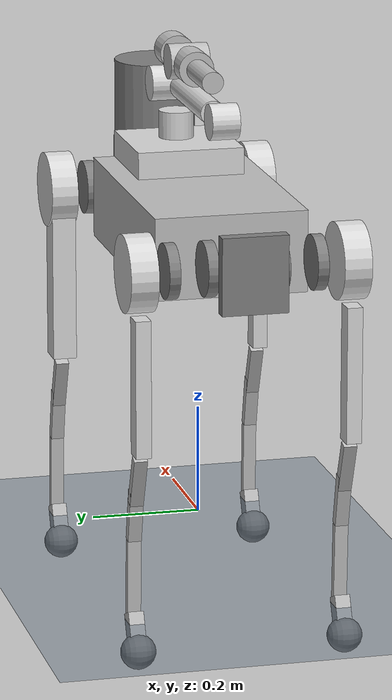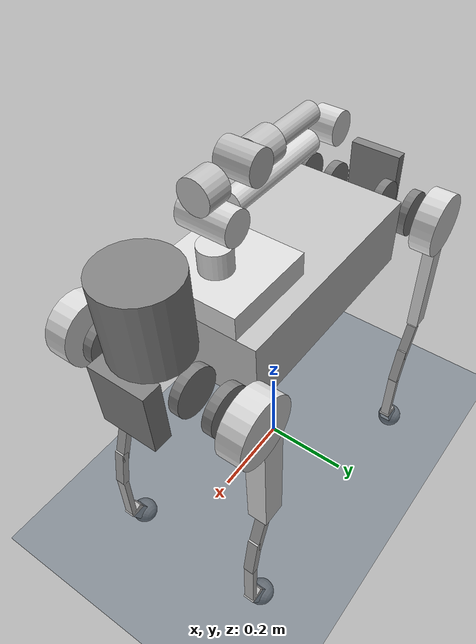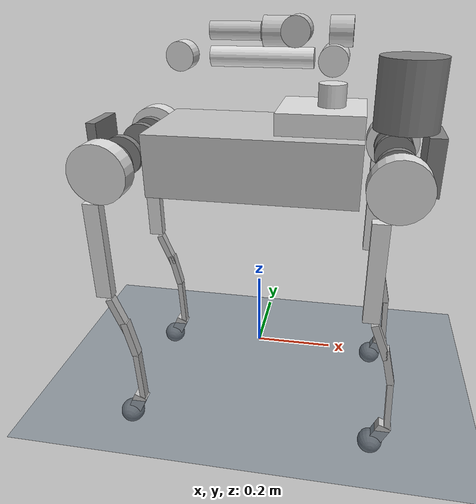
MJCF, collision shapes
<mujoco model="b2z1">
  <compiler autolimits="true" angle="radian" meshdir="../meshes/"/>

  <asset>
    <texture name="grid" type="2d" builtin="checker" rgb1=".1 .2 .3" rgb2=".2 .3 .4" width="300" height="300"/>
    <material name="grid" texture="grid" texrepeat="1 1" texuniform="true" reflectance=".2"/>

    <mesh name="base_link" file="base_link.stl"/>
    <mesh name="FL_hip" file="FL_hip.stl"/>
    <mesh name="FL_thigh" file="FL_thigh.stl"/>
    <mesh name="FL_calf" file="FL_calf.stl"/>
    <mesh name="FR_hip" file="FR_hip.stl"/>
    <mesh name="FR_thigh" file="FR_thigh.stl"/>
    <mesh name="FR_calf" file="FR_calf.stl"/>
    <mesh name="RL_hip" file="RL_hip.stl"/>
    <mesh name="RL_thigh" file="RL_thigh.stl"/>
    <mesh name="RL_calf" file="RL_calf.stl"/>
    <mesh name="RR_hip" file="RR_hip.stl"/>
    <mesh name="RR_thigh" file="RR_thigh.stl"/>
    <mesh name="RR_calf" file="RR_calf.stl"/>
    <mesh name="z1_Link00" file="z1_Link00.stl"/>
    <mesh name="z1_Link01" file="z1_Link01.stl"/>
    <mesh name="z1_Link02" file="z1_Link02.stl"/>
    <mesh name="z1_Link03" file="z1_Link03.stl"/>
    <mesh name="z1_Link04" file="z1_Link04.stl"/>
    <mesh name="z1_Link05" file="z1_Link05.stl"/>
    <mesh name="z1_Link06" file="z1_Link06.stl"/>
  </asset>

  <worldbody>
    <!-- 添加地面 -->
    <geom name="ground" type="plane" size="10 10 0.1" pos="0 0 -0.1" material="grid" friction="1.2 0.3 0.1"/>

    <!-- 调整机器人整体高度，使其站立在地面上 -->
    <body name="base_link" pos="0 0 0.55">
      <freejoint/>
      <!-- 原有的机器人几何体全部移入这个body中 -->
      <geom type="mesh" contype="0" conaffinity="0" group="1" density="0" rgba="0.74876 0.74876 0.74876 1" mesh="base_link"/>
      <geom size="0.25 0.14 0.075" type="box" rgba="0.74876 0.74876 0.74876 1"/>
      <geom size="0.076 0.08" pos="0.34218 0 0.15851" type="cylinder"/>
      <geom size="0.02 0.06 0.07" pos="0.41 0 0.005" type="box"/>
      <geom size="0.0125 0.06 0.07" pos="-0.405 0 0.005" type="box"/>
      <geom size="0.05 0.01" pos="0.20205 0.072 0" quat="0.707107 0 0.707107 0" type="cylinder"/>
      <geom size="0.05 0.01" pos="0.20205 -0.072 0" quat="0.707107 0 0.707107 0" type="cylinder"/>
      <geom size="0.05 0.01" pos="-0.20205 0.072 0" quat="0.707107 0 0.707107 0" type="cylinder"/>
      <geom size="0.05 0.01" pos="-0.20205 -0.072 0" quat="0.707107 0 0.707107 0" type="cylinder"/>
      <geom size="0.1 0.1 0.025" pos="0.15 0 0.1" type="box" contype="0" conaffinity="0" group="1" density="0" rgba="0.85 0.85 0.85 1"/>
      <geom size="0.1 0.1 0.025" pos="0.15 0 0.1" type="box" rgba="0.85 0.85 0.85 1"/>
      <geom pos="0.17 0 0.125" quat="1 0 0 0" type="mesh" contype="0" conaffinity="0" group="1" density="0" rgba="0.85 0.85 0.85 1" mesh="z1_Link00"/>
      <geom size="0.0325 0.0255" pos="0.17 0 0.1505" type="cylinder" rgba="0.85 0.85 0.85 1"/>
      <body name="FL_hip" pos="0.3285 0.072 0">
        <inertial pos="-0.00274412 -0.00822657 0" quat="0.507287 0.506932 0.492619 0.492957" mass="2.9464" diaginertia="0.00505471 0.00402681 0.00348237"/>
        <joint name="FL_hip_joint" pos="0 0 0" axis="1 0 0" range="-0.87 0.87" actuatorfrcrange="-200 200"/>
        <geom type="mesh" contype="0" conaffinity="0" group="1" density="0" rgba="0.85 0.85 0.85 1" mesh="FL_hip"/>
        <geom size="0.07 0.025" pos="0 0.12 0" quat="0.707107 0.707107 0 0" type="cylinder" rgba="0.85 0.85 0.85 1"/>
        <geom size="0.05 0.01" pos="0 -0.00798 0" quat="0.707107 0.707107 0 0" type="cylinder"/>
        <body name="FL_thigh" pos="0 0.11973 0">
          <inertial pos="-0.00263175 -0.0302271 -0.0545473" quat="0.55531 0.074085 -0.0356501 0.827569" mass="4.8094" diaginertia="0.0647238 0.0638299 0.00827354"/>
          <joint name="FL_thigh_joint" pos="0 0 0" axis="0 1 0" range="-0.94 4.69" actuatorfrcrange="-200 200"/>
          <geom type="mesh" contype="0" conaffinity="0" group="1" density="0" rgba="0.85 0.85 0.85 1" mesh="FL_thigh"/>
          <geom size="0.16 0.02225 0.027" pos="-0.025 0 -0.16" quat="0.707388 0 0.706825 0" type="box" rgba="0.85 0.85 0.85 1"/>
          <geom size="0.05 0.01" pos="0 -0.05788 0" quat="0.707107 0.707107 0 0" type="cylinder"/>
          <body name="FL_calf" pos="0 -8.6984e-05 -0.35">
            <inertial pos="-0.0559618 0 -0.044372" quat="0.687062 -0.16717 -0.16717 0.687062" mass="0.53" diaginertia="0.0305664 0.0276967 0.00313573"/>
            <joint name="FL_calf_joint" pos="0 0 0" axis="0 1 0" range="-2.82 -0.43" actuatorfrcrange="-320 320"/>
            <geom type="mesh" contype="0" conaffinity="0" group="1" density="0" rgba="0.74876 0.74876 0.74876 1" mesh="FL_calf"/>
            <geom size="0.05 0.01225 0.009" pos="-0.002 0 -0.03" quat="0.825336 0 0.564642 0" type="box" rgba="0.74876 0.74876 0.74876 1"/>
            <geom size="0.05 0.01225 0.009" pos="0.022 0 -0.1" quat="0.780707 0 0.624897 0" type="box" rgba="0.74876 0.74876 0.74876 1"/>
            <geom size="0.075 0.01225 0.0075" pos="0.036 0 -0.225" quat="0.721382 0 0.692537 0" type="box" rgba="0.74876 0.74876 0.74876 1"/>
            <geom size="0.025 0.014 0.0175" pos="0.023 0 -0.31" quat="0.540302 0 0.841471 0" type="box" rgba="0.74876 0.74876 0.74876 1"/>
            <geom name="FL_foot" size="0.032" pos="0 0 -0.35" quat="0.707388 0.706825 0 0" contype="1" conaffinity="1" friction="1.6 0.4 0.1"/>
          </body>
        </body>
      </body>
      <body name="FR_hip" pos="0.3285 -0.072 0">
        <inertial pos="-0.00918205 0.00927893 0.000239503" quat="0.476089 0.476234 0.519517 0.525967" mass="2.9464" diaginertia="0.00483542 0.00371023 0.00279582"/>
        <joint name="FR_hip_joint" pos="0 0 0" axis="1 0 0" range="-0.87 0.87" actuatorfrcrange="-200 200"/>
        <geom type="mesh" contype="0" conaffinity="0" group="1" density="0" rgba="0.85 0.85 0.85 1" mesh="FR_hip"/>
        <geom size="0.07 0.025" pos="0 -0.12 0" quat="0.707107 0.707107 0 0" type="cylinder" rgba="0.85 0.85 0.85 1"/>
        <geom size="0.05 0.01" pos="0 0.00798 0" quat="0.707107 0.707107 0 0" type="cylinder"/>
        <body name="FR_thigh" pos="0 -0.11973 0">
          <inertial pos="-0.00921236 0.0302271 -0.0545473" quat="0.444592 -0.00741797 0.0763473 0.892443" mass="4.8094" diaginertia="0.0648942 0.0630672 0.00811652"/>
          <joint name="FR_thigh_joint" pos="0 0 0" axis="0 1 0" range="-0.94 4.69" actuatorfrcrange="-200 200"/>
          <geom type="mesh" contype="0" conaffinity="0" group="1" density="0" rgba="0.85 0.85 0.85 1" mesh="FR_thigh"/>
          <geom size="0.125 0.014 0.02" pos="-0.03 0 -0.2" quat="0.707388 0 0.706825 0" type="box" rgba="0.85 0.85 0.85 1"/>
          <geom size="0.05 0.01" pos="0 0.05788 0" quat="0.707107 0.707107 0 0" type="cylinder"/>
          <body name="FR_calf" pos="0 8.6986e-05 -0.35">
            <inertial pos="-0.0559618 0 -0.044372" quat="0.687062 -0.16717 -0.16717 0.687062" mass="0.53" diaginertia="0.0305664 0.0276967 0.00313573"/>
            <joint name="FR_calf_joint" pos="0 0 0" axis="0 1 0" range="-2.82 -0.43" actuatorfrcrange="-320 320"/>
            <geom type="mesh" contype="0" conaffinity="0" group="1" density="0" rgba="0.74876 0.74876 0.74876 1" mesh="FR_calf"/>
            <geom size="0.05 0.01225 0.009" pos="-0.002 0 -0.03" quat="0.825336 0 0.564642 0" type="box" rgba="0.74876 0.74876 0.74876 1"/>
            <geom size="0.05 0.01225 0.009" pos="0.022 0 -0.1" quat="0.780707 0 0.624897 0" type="box" rgba="0.74876 0.74876 0.74876 1"/>
            <geom size="0.075 0.01225 0.0075" pos="0.036 0 -0.225" quat="0.721382 0 0.692537 0" type="box" rgba="0.74876 0.74876 0.74876 1"/>
            <geom size="0.025 0.014 0.0175" pos="0.023 0 -0.31" quat="0.540302 0 0.841471 0" type="box" rgba="0.74876 0.74876 0.74876 1"/>
            <geom name="FR_foot" size="0.032" pos="0 0 -0.35" quat="0.707388 0.706825 0 0" contype="1" conaffinity="1" friction="1.6 0.4 0.1"/>
          </body>
        </body>
      </body>
      <body name="RL_hip" pos="-0.3285 0.072 0">
        <inertial pos="0.00918205 -0.00927893 0.000239503" quat="0.476234 0.476089 0.525967 0.519517" mass="2.9464" diaginertia="0.00483542 0.00371023 0.00279582"/>
        <joint name="RL_hip_joint" pos="0 0 0" axis="1 0 0" range="-0.87 0.87" actuatorfrcrange="-200 200"/>
        <geom type="mesh" contype="0" conaffinity="0" group="1" density="0" rgba="0.85 0.85 0.85 1" mesh="RL_hip"/>
        <geom size="0.07 0.025" pos="0 0.12 0" quat="0.707107 0.707107 0 0" type="cylinder" rgba="0.85 0.85 0.85 1"/>
        <geom size="0.05 0.01" pos="0 -0.00798 0" quat="0.707107 0.707107 0 0" type="cylinder"/>
        <body name="RL_thigh" pos="0 0.11973 0">
          <inertial pos="-0.00263175 -0.0302271 -0.0545473" quat="0.555342 0.0740859 -0.035647 0.827548" mass="4.8094" diaginertia="0.0647241 0.06383 0.00827361"/>
          <joint name="RL_thigh_joint" pos="0 0 0" axis="0 1 0" range="-0.94 4.69" actuatorfrcrange="-200 200"/>
          <geom type="mesh" contype="0" conaffinity="0" group="1" density="0" rgba="0.85 0.85 0.85 1" mesh="RL_thigh"/>
          <geom size="0.125 0.014 0.02" pos="-0.03 0 -0.2" quat="0.707388 0 0.706825 0" type="box" rgba="0.85 0.85 0.85 1"/>
          <geom size="0.05 0.01" pos="0 -0.05788 0" quat="0.707107 0.707107 0 0" type="cylinder"/>
          <body name="RL_calf" pos="0 -8.6984e-05 -0.35">
            <inertial pos="-0.0559618 0 -0.044372" quat="0.687062 -0.16717 -0.16717 0.687062" mass="0.53" diaginertia="0.0305664 0.0276967 0.00313573"/>
            <joint name="RL_calf_joint" pos="0 0 0" axis="0 1 0" range="-2.82 -0.43" actuatorfrcrange="-320 320"/>
            <geom type="mesh" contype="0" conaffinity="0" group="1" density="0" rgba="0.74876 0.74876 0.74876 1" mesh="RL_calf"/>
            <geom size="0.05 0.01225 0.009" pos="-0.002 0 -0.03" quat="0.825336 0 0.564642 0" type="box" rgba="0.74876 0.74876 0.74876 1"/>
            <geom size="0.05 0.01225 0.009" pos="0.022 0 -0.1" quat="0.780707 0 0.624897 0" type="box" rgba="0.74876 0.74876 0.74876 1"/>
            <geom size="0.075 0.01225 0.0075" pos="0.036 0 -0.225" quat="0.721382 0 0.692537 0" type="box" rgba="0.74876 0.74876 0.74876 1"/>
            <geom size="0.025 0.014 0.0175" pos="0.023 0 -0.31" quat="0.540302 0 0.841471 0" type="box" rgba="0.74876 0.74876 0.74876 1"/>
            <geom name="RL_foot" size="0.032" pos="0 0 -0.35" quat="0.707388 0.706825 0 0" contype="1" conaffinity="1" friction="1.6 0.4 0.1"/>
          </body>
        </body>
      </body>
      <body name="RR_hip" pos="-0.3285 -0.072 0">
        <inertial pos="0.00274412 0.00822657 0" quat="0.506932 0.507287 0.492957 0.492619" mass="2.9464" diaginertia="0.00505471 0.00402681 0.00348237"/>
        <joint name="RR_hip_joint" pos="0 0 0" axis="1 0 0" range="-0.87 0.87" actuatorfrcrange="-200 200"/>
        <geom type="mesh" contype="0" conaffinity="0" group="1" density="0" rgba="0.85 0.85 0.85 1" mesh="RR_hip"/>
        <geom size="0.07 0.025" pos="0 -0.12 0" quat="0.707107 0.707107 0 0" type="cylinder" rgba="0.85 0.85 0.85 1"/>
        <geom size="0.05 0.01" pos="0 0.00798 0" quat="0.707107 0.707107 0 0" type="cylinder"/>
        <body name="RR_thigh" pos="0 -0.11973 0">
          <inertial pos="-0.00921236 0.0302271 -0.0545473" quat="0.444571 -0.00741611 0.0763481 0.892453" mass="4.8094" diaginertia="0.064894 0.0630671 0.00811646"/>
          <joint name="RR_thigh_joint" pos="0 0 0" axis="0 1 0" range="-0.94 4.69" actuatorfrcrange="-200 200"/>
          <geom type="mesh" contype="0" conaffinity="0" group="1" density="0" rgba="0.85 0.85 0.85 1" mesh="RR_thigh"/>
          <geom size="0.125 0.014 0.02" pos="-0.03 0 -0.2" quat="0.707388 0 0.706825 0" type="box" rgba="0.85 0.85 0.85 1"/>
          <geom size="0.05 0.01" pos="0 0.05788 0" quat="0.707107 0.707107 0 0" type="cylinder"/>
          <body name="RR_calf" pos="0 8.6986e-05 -0.35">
            <inertial pos="-0.0559618 2.06792e-05 -0.044372" quat="0.687173 -0.167191 -0.167148 0.686951" mass="0.53" diaginertia="0.0305664 0.0276967 0.00313573"/>
            <joint name="RR_calf_joint" pos="0 0 0" axis="0 1 0" range="-2.82 -0.43" actuatorfrcrange="-320 320"/>
            <geom type="mesh" contype="0" conaffinity="0" group="1" density="0" rgba="0.74876 0.74876 0.74876 1" mesh="RR_calf"/>
            <geom size="0.05 0.01225 0.009" pos="-0.002 0 -0.03" quat="0.825336 0 0.564642 0" type="box" rgba="0.74876 0.74876 0.74876 1"/>
            <geom size="0.05 0.01225 0.009" pos="0.022 0 -0.1" quat="0.780707 0 0.624897 0" type="box" rgba="0.74876 0.74876 0.74876 1"/>
            <geom size="0.075 0.01225 0.0075" pos="0.036 0 -0.225" quat="0.721382 0 0.692537 0" type="box" rgba="0.74876 0.74876 0.74876 1"/>
            <geom size="0.025 0.014 0.0175" pos="0.023 0 -0.31" quat="0.540302 0 0.841471 0" type="box" rgba="0.74876 0.74876 0.74876 1"/>
            <geom name="RR_foot" size="0.032" pos="0 0 -0.35" quat="0.707388 0.706825 0 0" contype="1" conaffinity="1" friction="1.6 0.4 0.1"/>
          </body>
        </body>
      </body>
      <body name="link01" pos="0.17 0 0.1835">
        <inertial pos="2.47e-06 -0.00025198 0.0231717" quat="0.705633 0.708578 -0.000280458 0.000356448" mass="0.673326" diaginertia="0.00128328 0.000839362 0.000719308"/>
        <joint name="joint1" pos="0 0 0" axis="0 0 1" range="-2.61799 2.61799" actuatorfrcrange="-30 30" damping="1" frictionloss="1"/>
        <geom type="mesh" contype="0" conaffinity="0" group="1" density="0" rgba="0.85 0.85 0.85 1" mesh="z1_Link01"/>
        <body name="link02" pos="0 0 0.045">
          <inertial pos="-0.110126 0.00240029 0.00158266" quat="-0.00720473 0.706934 0.0117222 0.707146" mass="1.19132" diaginertia="0.0246612 0.0243113 0.00100468"/>
          <joint name="joint2" pos="0 0 0" axis="0 1 0" range="0 3.14159" actuatorfrcrange="-60 60" damping="2" frictionloss="2"/>
          <geom type="mesh" contype="0" conaffinity="0" group="1" density="0" rgba="0.85 0.85 0.85 1" mesh="z1_Link02"/>
          <geom size="0.0325 0.051" quat="0.707107 0.707107 0 0" type="cylinder" rgba="0.85 0.85 0.85 1"/>
          <geom size="0.0225 0.1175" pos="-0.1625 0 0" quat="0.707107 0 0.707107 0" type="cylinder" rgba="0.85 0.85 0.85 1"/>
          <geom size="0.0325 0.0255" pos="-0.35 0 0" quat="0.707107 0.707107 0 0" type="cylinder" rgba="0.85 0.85 0.85 1"/>
          <body name="link03" pos="-0.35 0 0">
            <inertial pos="0.106092 -0.00541815 0.0347638" quat="0.390759 0.613535 0.495032 0.475211" mass="0.839409" diaginertia="0.00955021 0.00938044 0.000558553"/>
            <joint name="joint3" pos="0 0 0" axis="0 1 0" range="-4.7822 0" actuatorfrcrange="-30 30" damping="1" frictionloss="1"/>
            <geom type="mesh" contype="0" conaffinity="0" group="1" density="0" rgba="0.74876 0.74876 0.74876 1" mesh="z1_Link03"/>
            <geom size="0.02 0.058" pos="0.128 0 0.055" quat="0.707107 0 0.707107 0" type="cylinder" rgba="0.74876 0.74876 0.74876 1"/>
            <geom size="0.0325 0.0295" pos="0.2205 0 0.055" quat="0.707107 0 0.707107 0" type="cylinder" rgba="0.74876 0.74876 0.74876 1"/>
            <body name="link04" pos="0.218 0 0.057">
              <inertial pos="0.0436668 0.00364738 -0.00170192" quat="0.0441445 0.67379 0.128937 0.726246" mass="0.564046" diaginertia="0.000984312 0.00093769 0.000302838"/>
              <joint name="joint4" pos="0 0 0" axis="0 1 0" range="-1.74533 1.5708" actuatorfrcrange="-30 30" damping="1" frictionloss="1"/>
              <geom type="mesh" contype="0" conaffinity="0" group="1" density="0" rgba="0.74876 0.74876 0.74876 1" mesh="z1_Link04"/>
              <geom size="0.0325 0.0365" pos="0.0472 0 0" quat="0.707107 0.707107 0 0" type="cylinder" rgba="0.74876 0.74876 0.74876 1"/>
              <body name="link05" pos="0.07 0 0">
                <inertial pos="0.0312153 0 0.00646316" quat="0.531936 0.464048 0.457086 0.541088" mass="0.389385" diaginertia="0.000558963 0.000547314 0.000167332"/>
                <joint name="joint5" pos="0 0 0" axis="0 0 1" range="-1.72788 1.72788" actuatorfrcrange="-30 30" damping="1" frictionloss="1"/>
                <geom type="mesh" contype="0" conaffinity="0" group="1" density="0" rgba="0.74876 0.74876 0.74876 1" mesh="z1_Link05"/>
                <body name="link06" pos="0.0492 0 0">
                  <inertial pos="0.0241569 -0.00017355 -0.00143876" quat="0.997266 -0.0715433 0.00854786 -0.0164304" mass="0.288758" diaginertia="0.000183329 0.000147473 0.000146778"/>
                  <joint name="joint6" pos="0 0 0" axis="1 0 0" range="-2.79253 2.79253" actuatorfrcrange="-30 30" damping="1" frictionloss="1"/>
                  <geom type="mesh" contype="0" conaffinity="0" group="1" density="0" rgba="0.74876 0.74876 0.74876 1" mesh="z1_Link06"/>
                  <geom name="link06" size="0.0325 0.0255" pos="0.0255 0 0" quat="0.707107 0 0.707107 0" type="cylinder" rgba="0.74876 0.74876 0.74876 1"/>
                </body>
              </body>
            </body>
          </body>
        </body>
      </body>
     </body>
  </worldbody>

  <keyframe>
    <key name="standing_pose"
         qpos="0 0 0.55 1 0 0 0
               0.0 0.75 -1.5    0.0 0.75 -1.5    0.0 0.75 -1.5    0.0 0.75 -1.5
               0.0 0.0 0.0 0.0 0.0 0.0"/>
  </keyframe>

  <actuator>
    <!-- 腿部驱动器 -->
    <motor joint="FL_hip_joint" gear="1"/>
    <motor joint="FL_thigh_joint" gear="1"/>
    <motor joint="FL_calf_joint" gear="1"/>

    <motor joint="FR_hip_joint" gear="1"/>
    <motor joint="FR_thigh_joint" gear="1"/>
    <motor joint="FR_calf_joint" gear="1"/>

    <motor joint="RL_hip_joint" gear="1"/>
    <motor joint="RL_thigh_joint" gear="1"/>
    <motor joint="RL_calf_joint" gear="1"/>

    <motor joint="RR_hip_joint" gear="1"/>
    <motor joint="RR_thigh_joint" gear="1"/>
    <motor joint="RR_calf_joint" gear="1"/>

    <!-- 机械臂驱动器 -->
    <motor joint="joint1" gear="1"/>
    <motor joint="joint2" gear="1"/>
    <motor joint="joint3" gear="1"/>
    <motor joint="joint4" gear="1"/>
    <motor joint="joint5" gear="1"/>
    <motor joint="joint6" gear="1"/>
  </actuator>
</mujoco>
